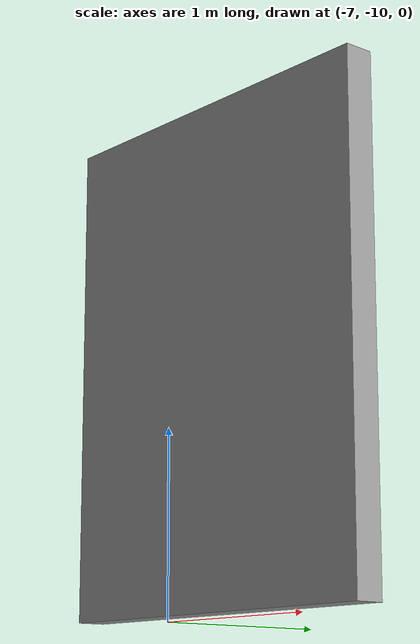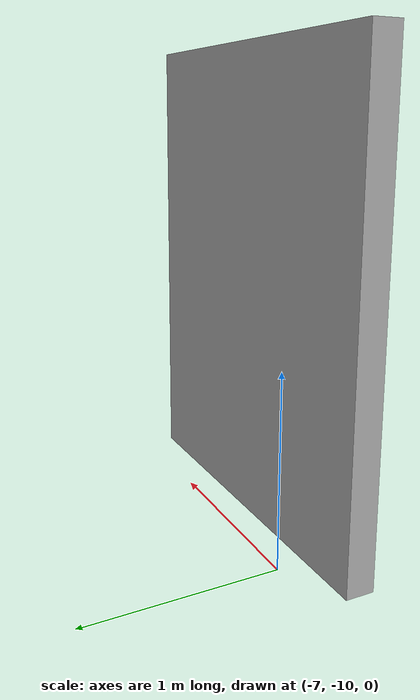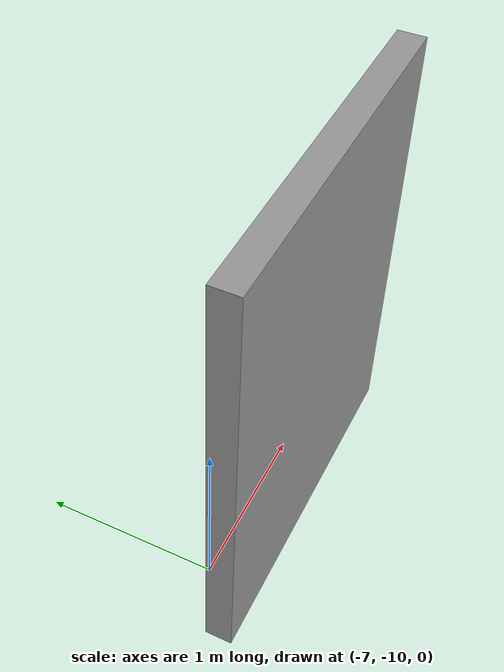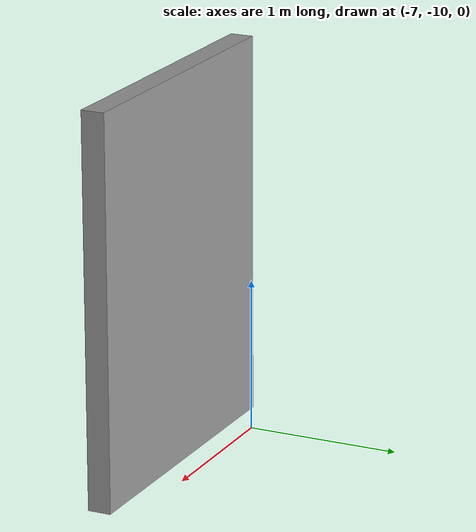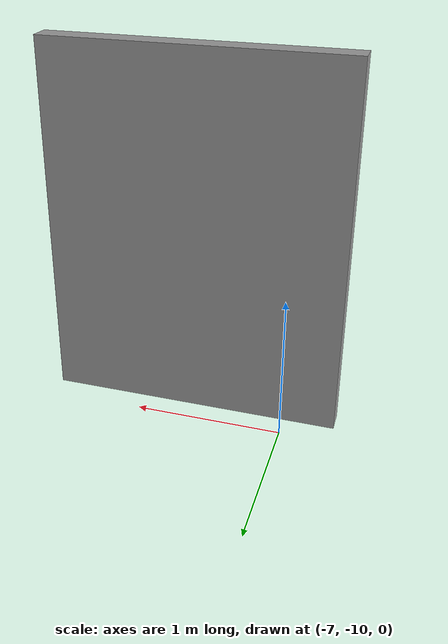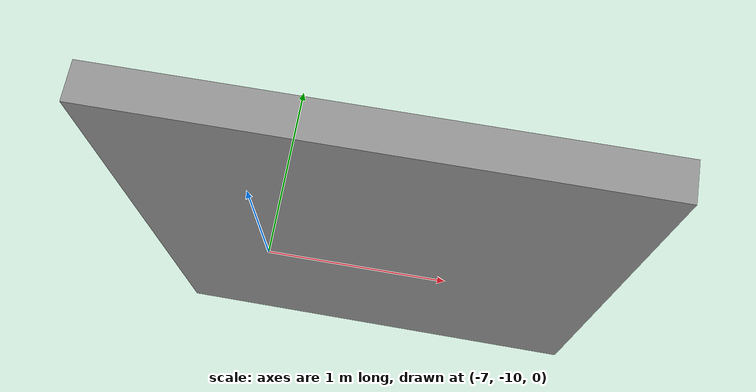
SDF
<?xml version='1.0'?>
<sdf version='1.7'>
  <model name='fix_wall2'>
    <pose>-3.67199 -5.15184 0 0 -0 0</pose>
    <link name='Wall_19'>
      <collision name='Wall_19_Collision'>
        <geometry>
          <box>
            <size>2 0.15 2.5</size>
          </box>
        </geometry>
        <pose>0 0 1.25 0 -0 0</pose>
      </collision>
      <visual name='Wall_19_Visual'>
        <pose>0 0 1.25 0 -0 0</pose>
        <geometry>
          <box>
            <size>2 0.15 2.5</size>
          </box>
        </geometry>
        <material>
          <script>
            <uri>file://media/materials/scripts/gazebo.material</uri>
            <name>Gazebo/Grey</name>
          </script>
          <ambient>1 1 1 1</ambient>
        </material>
        <meta>
          <layer>0</layer>
        </meta>
      </visual>
      <pose>-2.67199 -5.07684 0 0 -0 0</pose>
    </link>
    <static>1</static>
  </model>
</sdf>
